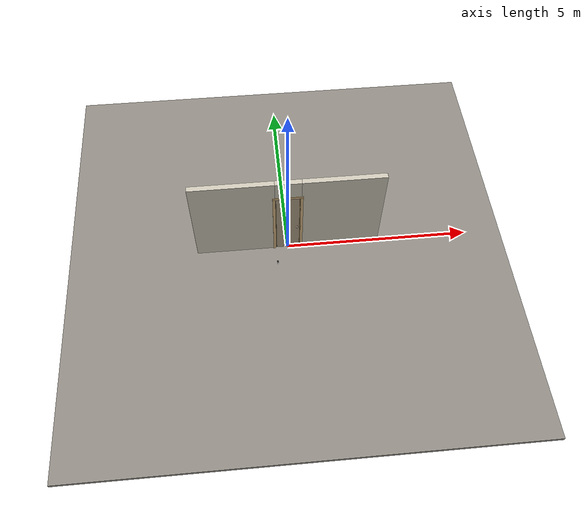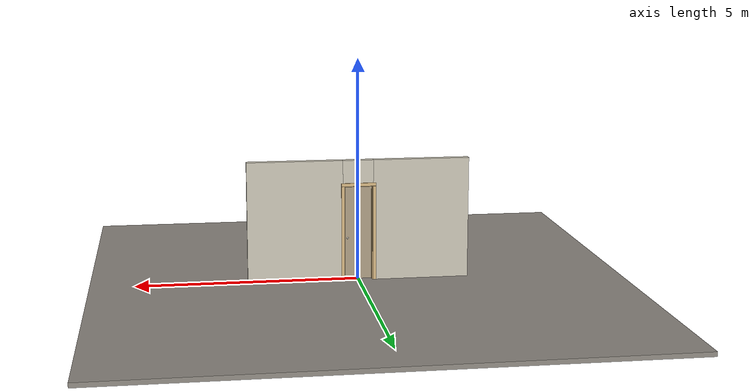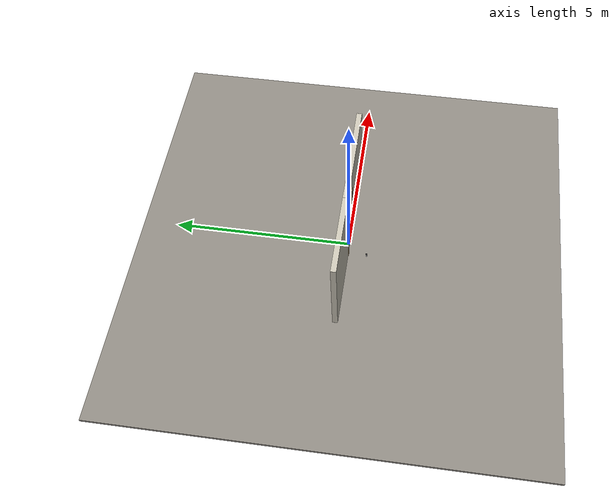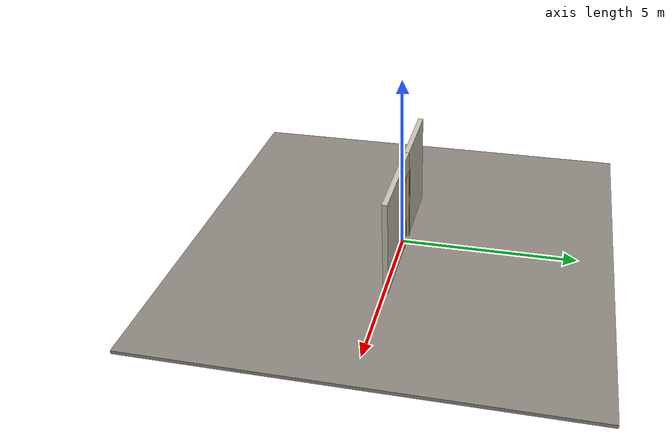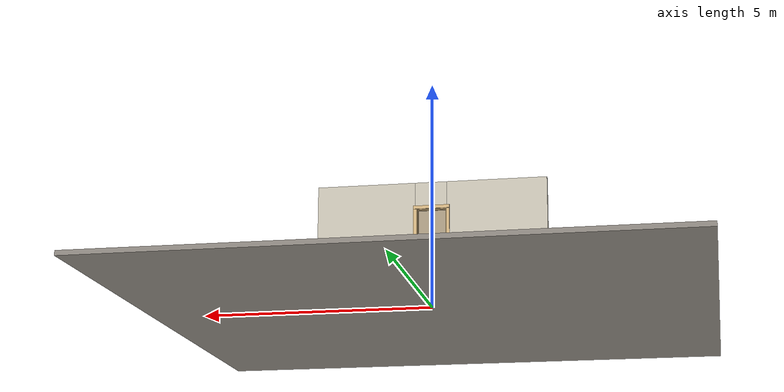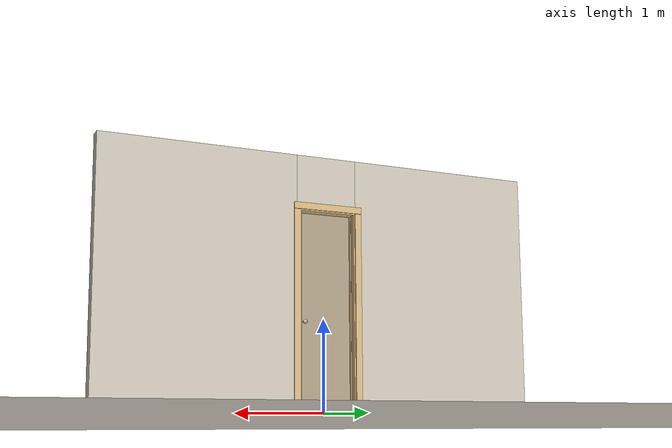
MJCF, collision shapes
<?xml version="1.0" ?>
<mujoco model="db0076_swing_single_full">
  <compiler angle="radian" meshdir="../../hardware" texturedir="../../textures" autolimits="true" inertiafromgeom="false"/>
  <option timestep="0.002" integrator="implicitfast" cone="elliptic" impratio="10" noslip_iterations="3">
    <flag multiccd="enable"/>
  </option>
  <size memory="16M"/>
  <default>
    <geom condim="4" solref="0.005 1" solimp="0.95 0.99 0.001"/>
    <joint solreflimit="0.005 1" solimplimit="0.95 0.99 0.001"/>
    <tendon solreflimit="0.005 1"/>
    <equality solref="0.002 1"/>
  </default>
  <visual>
    <headlight ambient="0.4 0.4 0.4" diffuse="0.7 0.7 0.7" specular="0.2 0.2 0.2"/>
    <quality shadowsize="4096"/>
    <map znear="0.01" zfar="60"/>
  </visual>
  <asset>
    <mesh name="hinge_e53abd72ad" file="hinge_e53abd72ad.obj"/>
    <mesh name="hinge_jamb_c17a76d68c" file="hinge_jamb_c17a76d68c.obj"/>
    <mesh name="knob_248d825e64" file="knob_248d825e64.obj"/>
    <mesh name="knob_d1888f6f03" file="knob_d1888f6f03.obj"/>
    <mesh name="wreath_fb880cf526" file="wreath_fb880cf526.obj"/>
    <material name="mat_floor" rgba="0.55 0.53 0.5 1" specular="0.2" shininess="0.15" reflectance="0"/>
    <material name="mat_wall" rgba="0.78 0.76 0.7 1" specular="0.2" shininess="0.1" reflectance="0"/>
    <material name="mat_leaf" rgba="0.66 0.6 0.5 1" specular="0.2" shininess="0.45" reflectance="0"/>
    <material name="mat_hinge" rgba="0.65 0.66 0.68 1" specular="0.74" shininess="0.5" reflectance="0.36"/>
    <material name="mat_op_nickel_satin" rgba="0.72 0.7 0.66 1" specular="0.8" shininess="0.65" reflectance="0.4"/>
    <material name="mat_trim" rgba="0.85 0.66 0.3 1" specular="0.8" shininess="0.75" reflectance="0.4"/>
    <material name="mat_bolt" rgba="0.85 0.66 0.3 1" specular="0.8" shininess="0.75" reflectance="0.4"/>
    <material name="mat_frame" rgba="0.82 0.7 0.5 1" specular="0.2" shininess="0.45" reflectance="0"/>
    <material name="mat_wreath" rgba="0.12 0.3 0.12 1" specular="0.2" shininess="0.05" reflectance="0"/>
    <material name="mat_wreath_hook" rgba="0.85 0.66 0.3 1" specular="0.8" shininess="0.75" reflectance="0.4"/>
    <material name="mat_bumper_stop" rgba="0.08 0.08 0.08 1" specular="0.2" shininess="0.1" reflectance="0"/>
    <material name="mat_stop_base" rgba="0.9 0.9 0.92 1" specular="0.8" shininess="0.9" reflectance="0.4"/>
    <texture name="skybox" type="skybox" builtin="gradient" rgb1="0.6 0.7 0.85" rgb2="0.9 0.92 0.95" width="256" height="256"/>
  </asset>
  <worldbody>
    <light name="sun" pos="1.5 -2.5 4" dir="-0.3 0.5 -0.8" directional="true" diffuse="0.8 0.8 0.8" specular="0.3 0.3 0.3" castshadow="true"/>
    <light name="fill" pos="-1.5 2.5 3" dir="0.3 -0.5 -0.7" directional="true" diffuse="0.35 0.35 0.4" castshadow="false"/>
    <camera name="robot_view" pos="0 -2.592312 1.812087" xyaxes="1 0 0 0 0.26963 0.962964" fovy="52"/>
    <camera name="far_view" pos="0 2.683312 1.812087" xyaxes="-1 0 0 0 -0.26963 0.962964" fovy="52"/>
    <camera name="iso" pos="2.004737 -2.170262 2.234138" xyaxes="0.741536 0.670913 0 -0.242917 0.268487 0.932151" fovy="46"/>
    <camera name="detail_handle" pos="0.424 -0.8665 1.245" xyaxes="0.97561 0.219512 0 -0.070934 0.315262 0.94635" fovy="38"/>
    <geom name="floor" type="box" size="6 6 0.05" pos="0 0 -0.05" material="mat_floor" group="0" contype="1" conaffinity="1" friction="0.8 0.005 0.0001" density="2400"/>
    <geom name="wall_left" type="box" size="1.086 0.0725 1.3735" pos="-1.414 0.0455 1.3735" material="mat_wall" group="0" contype="1" conaffinity="1" friction="0.6 0.005 0.0001" density="800"/>
    <geom name="wall_right" type="box" size="1.071 0.0725 1.3735" pos="1.429 0.0455 1.3735" material="mat_wall" group="0" contype="1" conaffinity="1" friction="0.6 0.005 0.0001" density="800"/>
    <geom name="wall_header" type="box" size="0.343 0.0725 0.2755" pos="0.015 0.0455 2.4715" material="mat_wall" group="0" contype="1" conaffinity="1" friction="0.6 0.005 0.0001" density="800"/>
    <geom name="hinge_0_jamb" type="mesh" mesh="hinge_jamb_c17a76d68c" pos="-0.306 -0.027 0.259" material="mat_hinge" group="1" contype="0" conaffinity="0" density="7850"/>
    <geom name="hinge_1_jamb" type="mesh" mesh="hinge_jamb_c17a76d68c" pos="-0.306 -0.027 1.076" material="mat_hinge" group="1" contype="0" conaffinity="0" density="7850"/>
    <geom name="hinge_2_jamb" type="mesh" mesh="hinge_jamb_c17a76d68c" pos="-0.306 -0.027 1.963" material="mat_hinge" group="1" contype="0" conaffinity="0" density="7850"/>
    <geom name="jamb_hinge" type="box" size="0.0095 0.0725 1.0735" pos="-0.3185 0.0455 1.0735" material="mat_frame" group="0" contype="1" conaffinity="1" friction="0.6 0.005 0.0001" density="400"/>
    <geom name="strike_965_wall_n" type="box" size="0.0245 0.055075 0.0167" pos="0.3335 0.062925 0.965" material="mat_frame" group="0" contype="1" conaffinity="1" friction="0.6 0.005 0.0001" density="400"/>
    <geom name="strike_965_wall_p" type="box" size="0.0245 0.008 0.0167" pos="0.3335 -0.01585 0.965" material="mat_frame" group="0" contype="1" conaffinity="1" friction="0.6 0.005 0.0001" density="400"/>
    <geom name="strike_965_ramp" type="box" size="0.0245 0.01649 0.0167" pos="0.338136 -0.028673 0.965" quat="0.977148 0 0 0.212558" material="mat_frame" group="0" contype="1" conaffinity="1" friction="0.12 0.005 0.0001" density="400"/>
    <geom name="strike_965_back" type="box" size="0.01615 0.00785 0.0167" pos="0.34185 0 0.965" material="mat_frame" group="0" contype="1" conaffinity="1" friction="0.6 0.005 0.0001" density="400"/>
    <geom name="jamb_strike_0" type="box" size="0.0245 0.0725 0.47415" pos="0.3335 0.0455 0.47415" material="mat_frame" group="0" contype="1" conaffinity="1" friction="0.6 0.005 0.0001" density="400"/>
    <geom name="jamb_strike_1" type="box" size="0.0245 0.0725 0.58265" pos="0.3335 0.0455 1.56435" material="mat_frame" group="0" contype="1" conaffinity="1" friction="0.6 0.005 0.0001" density="400"/>
    <geom name="jamb_head" type="box" size="0.343 0.0725 0.0095" pos="0.015 0.0455 2.1565" material="mat_frame" group="0" contype="1" conaffinity="1" friction="0.6 0.005 0.0001" density="400"/>
    <geom name="head_stud" type="box" size="0.343 0.0725 0.015" pos="0.015 0.0455 2.181" material="mat_wall" group="0" contype="1" conaffinity="1" friction="0.6 0.005 0.0001" density="500"/>
    <geom name="stop_hinge" type="box" size="0.0055 0.016 1.0735" pos="-0.3035 0.0365 1.0735" material="mat_frame" group="0" contype="1" conaffinity="1" friction="0.6 0.005 0.0001" density="400"/>
    <geom name="stop_strike" type="box" size="0.0055 0.016 1.0735" pos="0.3035 0.0365 1.0735" material="mat_frame" group="0" contype="1" conaffinity="1" friction="0.6 0.005 0.0001" density="400"/>
    <geom name="stop_head" type="box" size="0.309 0.016 0.0055" pos="0 0.0365 2.1415" material="mat_frame" group="0" contype="1" conaffinity="1" friction="0.6 0.005 0.0001" density="400"/>
    <geom name="casing_l_n" type="box" size="0.035 0.008 1.083" pos="-0.358 -0.035 1.0735" material="mat_frame" group="2" contype="0" conaffinity="0" density="400"/>
    <geom name="casing_r_n" type="box" size="0.035 0.008 1.083" pos="0.358 -0.035 1.0735" material="mat_frame" group="2" contype="0" conaffinity="0" density="400"/>
    <geom name="casing_h_n" type="box" size="0.393 0.008 0.035" pos="0 -0.035 2.196" material="mat_frame" group="2" contype="0" conaffinity="0" density="400"/>
    <geom name="casing_l_p" type="box" size="0.035 0.008 1.083" pos="-0.358 0.126 1.0735" material="mat_frame" group="2" contype="0" conaffinity="0" density="400"/>
    <geom name="casing_r_p" type="box" size="0.035 0.008 1.083" pos="0.358 0.126 1.0735" material="mat_frame" group="2" contype="0" conaffinity="0" density="400"/>
    <geom name="casing_h_p" type="box" size="0.393 0.008 0.035" pos="0 0.126 2.196" material="mat_frame" group="2" contype="0" conaffinity="0" density="400"/>
    <geom name="door_stop_base" type="cylinder" size="0.022 0.003" pos="-0.322 -0.5455 0.003" material="mat_stop_base" group="0" contype="1" conaffinity="1" friction="0.6 0.005 0.0001" density="7850"/>
    <geom name="door_stop_post" type="cylinder" size="0.012 0.0245" pos="-0.322 -0.5455 0.0305" material="mat_stop_base" group="0" contype="1" conaffinity="1" friction="0.6 0.005 0.0001" density="7850"/>
    <geom name="door_stop_bumper" type="cylinder" size="0.022 0.02" pos="-0.322 -0.5455 0.075" material="mat_bumper_stop" group="0" contype="1" conaffinity="1" friction="0.6 0.005 0.0001" density="1100"/>
    <site name="approach_point" pos="0 -1.5 0" quat="1 0 0 0" size="0.05" rgba="0.2 0.9 0.2 0.5" group="4"/>
    <site name="goal_point" pos="0 1.5 0" quat="1 0 0 0" size="0.05" rgba="0.2 0.9 0.2 0.5" group="4"/>
    <site name="door_plane_center" pos="0 0 1.0735" quat="1 0 0 0" size="0.02" rgba="0.2 0.9 0.2 0.5" group="4"/>
    <body name="leaf" pos="-0.309 0 0">
      <inertial pos="0.302193 -0.003843 1.106815" mass="21.77532" quat="0.498134 0.501886 -0.500756 0.499216" diaginertia="0.689345311 8.281691653 8.954538759"/>
      <joint name="leaf_hinge" type="hinge" axis="0 0 -1" pos="0.003 -0.027 0" limited="true" range="0 1.570796" damping="0.103362" frictionloss="0.261734" armature="0.02"/>
      <geom name="leaf_slab" type="box" size="0.305 0.02 1.067" pos="0.308 0 1.076" material="mat_leaf" group="0" contype="1" conaffinity="1" friction="0.35 0.005 0.0001" density="1"/>
      <geom name="hinge_0" type="mesh" mesh="hinge_e53abd72ad" pos="0.003 -0.027 0.259" material="mat_hinge" group="1" contype="0" conaffinity="0" density="7850"/>
      <geom name="hinge_1" type="mesh" mesh="hinge_e53abd72ad" pos="0.003 -0.027 1.076" material="mat_hinge" group="1" contype="0" conaffinity="0" density="7850"/>
      <geom name="hinge_2" type="mesh" mesh="hinge_e53abd72ad" pos="0.003 -0.027 1.963" material="mat_hinge" group="1" contype="0" conaffinity="0" density="7850"/>
      <geom name="leaf_latch_bolt_faceplate" type="box" size="0.0006 0.01235 0.0267" pos="0.6124 0 0.965" material="mat_bolt" group="1" contype="0" conaffinity="0" density="8500"/>
      <geom name="wreath" type="mesh" mesh="wreath_fb880cf526" pos="0.308 -0.02 1.67352" quat="0.707107 0.707107 0 0" material="mat_wreath" group="2" contype="0" conaffinity="0" density="200"/>
      <geom name="wreath_hook" type="cylinder" size="0.004 0.008" pos="0.308 -0.027 1.81402" quat="0.707107 -0.707107 0 0" material="mat_wreath_hook" group="2" contype="0" conaffinity="0" density="8500"/>
      <site name="leaf_edge_mid" pos="0.613 0 1.067" quat="1 0 0 0" size="0.02" rgba="0.2 0.9 0.2 0.5" group="4"/>
      <body name="leaf_handle" pos="0.553 0 0.965">
        <inertial pos="0 -0.000221 0" mass="1.1511" quat="0.5 0.5 0.5 0.5" diaginertia="0.000312482 0.004034625 0.004034625"/>
        <joint name="leaf_handle_hinge" type="hinge" axis="0 -1 0" limited="true" range="0 0.87" damping="0.143614" frictionloss="0.038" stiffness="0.5" springref="-0.5" armature="0.01"/>
        <geom name="leaf_handle_spindle" type="cylinder" size="0.006 0.028" pos="0 0 0" quat="0.707107 -0.707107 0 0" material="mat_op_nickel_satin" group="1" contype="0" conaffinity="0" density="7850"/>
        <geom name="leaf_handle_knob_n" type="mesh" mesh="knob_248d825e64" pos="0 -0.02 0" quat="0.707107 0.707107 0 0" material="mat_op_nickel_satin" group="1" contype="0" conaffinity="0" density="3000"/>
        <geom name="leaf_handle_knob_col_n" type="sphere" size="0.0243" pos="0 -0.0665 0" material="mat_op_nickel_satin" group="0" contype="1" conaffinity="1" friction="0.9 0.01 0.0001" density="3000"/>
        <geom name="leaf_handle_knob_neck_n" type="cylinder" size="0.011 0.012" pos="0 -0.032 0" quat="0.707107 -0.707107 0 0" material="mat_op_nickel_satin" group="3" contype="1" conaffinity="1" rgba="0.8 0.3 0.3 0.25" friction="0.6 0.005 0.0001" density="3000"/>
        <geom name="leaf_handle_knob_p" type="mesh" mesh="knob_d1888f6f03" pos="0 0.02 0" quat="-0.707107 0.707107 0 0" material="mat_op_nickel_satin" group="1" contype="0" conaffinity="0" density="3000"/>
        <geom name="leaf_handle_knob_col_p" type="sphere" size="0.0243" pos="0 0.0665 0" material="mat_op_nickel_satin" group="0" contype="1" conaffinity="1" friction="0.9 0.01 0.0001" density="3000"/>
        <geom name="leaf_handle_knob_neck_p" type="cylinder" size="0.011 0.012" pos="0 0.032 0" quat="0.707107 -0.707107 0 0" material="mat_op_nickel_satin" group="3" contype="1" conaffinity="1" rgba="0.8 0.3 0.3 0.25" friction="0.6 0.005 0.0001" density="3000"/>
        <site name="leaf_handle_grip_n" pos="0 -0.0665 0" quat="1 0 0 0" size="0.012" rgba="0.2 0.9 0.2 0.5" group="4"/>
        <site name="leaf_handle_grip_p" pos="0 0.0665 0" quat="1 0 0 0" size="0.012" rgba="0.2 0.9 0.2 0.5" group="4"/>
      </body>
      <body name="leaf_latch_bolt" pos="0.613 0 0.965">
        <inertial pos="-0.00865 0 0" mass="0.041419" quat="0.92388 -0.382683 0 0" diaginertia="0.000000798 0.000005598 0.000005598"/>
        <joint name="leaf_latch_bolt_slide" type="slide" axis="-1 0 0" limited="true" range="0 0.0127" damping="2" frictionloss="0.3" stiffness="300" springref="-0.008333" armature="0.1"/>
        <geom name="leaf_latch_bolt_capsule" type="capsule" size="0.00635 0.015" pos="-0.00865 0 0" quat="0.707107 0 0.707107 0" material="mat_bolt" group="0" contype="1" conaffinity="1" friction="0.2 0.005 0.0001" density="8500"/>
      </body>
    </body>
  </worldbody>
  <tendon>
    <fixed name="leaf_latch_bolt_coupling" limited="true" range="0 10">
      <joint joint="leaf_latch_bolt_slide" coef="1"/>
      <joint joint="leaf_handle_hinge" coef="-0.015679"/>
    </fixed>
  </tendon>
  <sensor>
    <jointpos name="leaf_hinge_pos" joint="leaf_hinge"/>
    <jointvel name="leaf_hinge_vel" joint="leaf_hinge"/>
    <jointpos name="leaf_handle_hinge_pos" joint="leaf_handle_hinge"/>
    <jointvel name="leaf_handle_hinge_vel" joint="leaf_handle_hinge"/>
    <jointpos name="leaf_latch_bolt_slide_pos" joint="leaf_latch_bolt_slide"/>
    <jointvel name="leaf_latch_bolt_slide_vel" joint="leaf_latch_bolt_slide"/>
  </sensor>
</mujoco>
